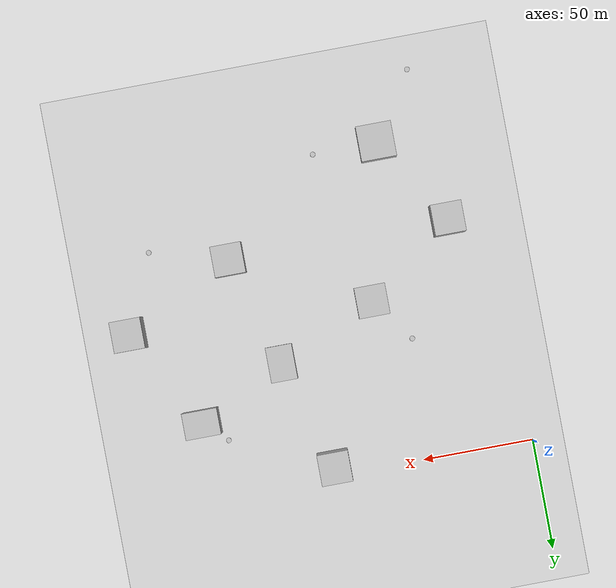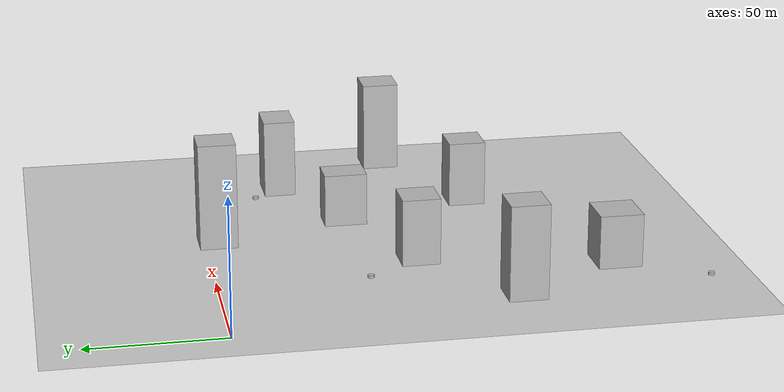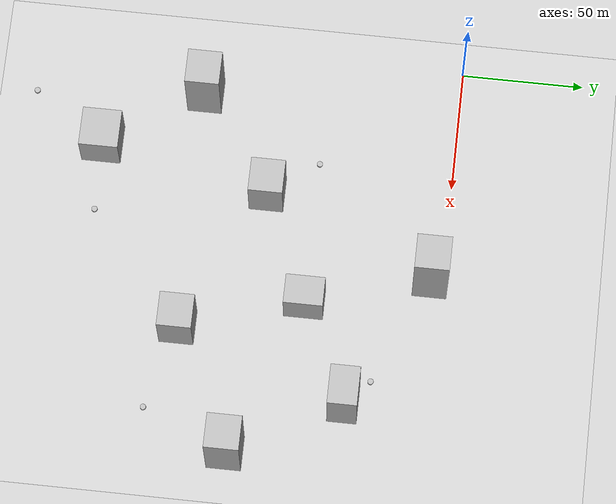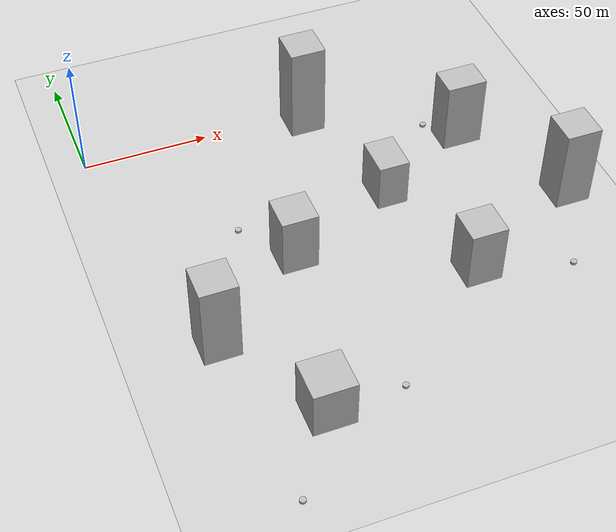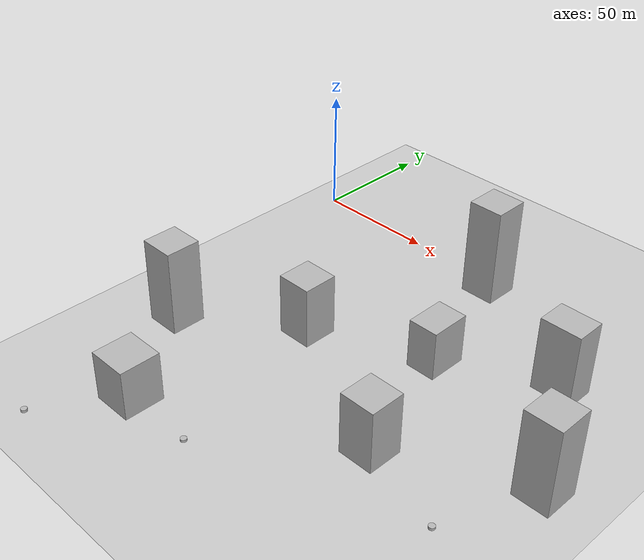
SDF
<?xml version="1.0" encoding="UTF-8"?>
<sdf version="1.9">

  <world name="default">

    <!-- ================= PHYSICS ================= -->
    <physics type="ode">
      <max_step_size>0.004</max_step_size>
      <real_time_factor>1.0</real_time_factor>
      <real_time_update_rate>250</real_time_update_rate>
    </physics>

    <gravity>0 0 -9.8</gravity>

    <magnetic_field>6e-06 2.3e-05 -4.2e-05</magnetic_field>

    <atmosphere type="adiabatic"/>

    <!-- ================= SCENE ================= -->
    <scene>
      <grid>false</grid>
      <ambient>0.4 0.4 0.4 1</ambient>
      <background>0.7 0.7 0.7 1</background>
      <shadows>true</shadows>
    </scene>

    <!-- ================= GROUND ================= -->
    <model name="ground_plane">
      <static>true</static>

      <link name="link">

        <collision name="collision">
          <geometry>
            <plane>
              <normal>0 0 1</normal>
              <size>500 500</size>
            </plane>
          </geometry>
        </collision>

        <visual name="visual">
          <geometry>
            <plane>
              <normal>0 0 1</normal>
              <size>500 500</size>
            </plane>
          </geometry>

          <material>
            <ambient>0.8 0.8 0.8 1</ambient>
            <diffuse>0.8 0.8 0.8 1</diffuse>
            <specular>0.2 0.2 0.2 1</specular>
          </material>
        </visual>

      </link>
    </model>

    <!-- ================= SUN ================= -->
    <light name="sun" type="directional">
      <pose>0 0 100 0 0 0</pose>
      <cast_shadows>true</cast_shadows>
      <intensity>1.0</intensity>
      <direction>0.3 0.4 -0.8</direction>
    </light>

    <!--                 TALL BUILDINGS                    -->

    <model name="obstacle_building_01">
      <static>true</static>
      <pose>120 -105 12.5 0 0 0</pose>
      <link name="link">

        <collision name="collision">
          <geometry>
            <box>
              <size>14 14 25</size>
            </box>
          </geometry>
        </collision>

        <visual name="visual">
          <geometry>
            <box>
              <size>14 14 25</size>
            </box>
          </geometry>
        </visual>

      </link>
    </model>

    <model name="obstacle_building_02">
      <static>true</static>
      <pose>170 -80 17.5 0 0 0</pose>
      <link name="link">

        <collision name="collision">
          <geometry>
            <box>
              <size>14 14 35</size>
            </box>
          </geometry>
        </collision>

        <visual name="visual">
          <geometry>
            <box>
              <size>14 14 35</size>
            </box>
          </geometry>
        </visual>

      </link>
    </model>

    <model name="obstacle_building_03">
      <static>true</static>
      <pose>105 -55 10 0 0 0</pose>
      <link name="link">

        <collision name="collision">
          <geometry>
            <box>
              <size>12 16 20</size>
            </box>
          </geometry>
        </collision>

        <visual name="visual">
          <geometry>
            <box>
              <size>12 16 20</size>
            </box>
          </geometry>
        </visual>

      </link>
    </model>

    <model name="obstacle_building_04">
      <static>true</static>
      <pose>145 -35 15 0 0 0</pose>
      <link name="link">

        <collision name="collision">
          <geometry>
            <box>
              <size>16 12 30</size>
            </box>
          </geometry>
        </collision>

        <visual name="visual">
          <geometry>
            <box>
              <size>16 12 30</size>
            </box>
          </geometry>
        </visual>

      </link>
    </model>

    <model name="obstacle_building_05">
      <static>true</static>
      <pose>90 -5 20 0 0 0</pose>
      <link name="link">

        <collision name="collision">
          <geometry>
            <box>
              <size>14 14 40</size>
            </box>
          </geometry>
        </collision>

        <visual name="visual">
          <geometry>
            <box>
              <size>14 14 40</size>
            </box>
          </geometry>
        </visual>

      </link>
    </model>

    <model name="obstacle_building_06">
      <static>true</static>
      <pose>60 -75 12.5 0 0 0</pose>
      <link name="link">

        <collision name="collision">
          <geometry>
            <box>
              <size>14 14 25</size>
            </box>
          </geometry>
        </collision>

        <visual name="visual">
          <geometry>
            <box>
              <size>14 14 25</size>
            </box>
          </geometry>
        </visual>

      </link>
    </model>

    <model name="obstacle_building_07">
      <static>true</static>
      <pose>20 -105 17.5 0 0 0</pose>
      <link name="link">

        <collision name="collision">
          <geometry>
            <box>
              <size>14 14 35</size>
            </box>
          </geometry>
        </collision>

        <visual name="visual">
          <geometry>
            <box>
              <size>14 14 35</size>
            </box>
          </geometry>
        </visual>

      </link>
    </model>

    <model name="obstacle_building_08">
      <static>true</static>
      <pose>45 -145 10 0 0 0</pose>
      <link name="link">

        <collision name="collision">
          <geometry>
            <box>
              <size>16 16 20</size>
            </box>
          </geometry>
        </collision>

        <visual name="visual">
          <geometry>
            <box>
              <size>16 16 20</size>
            </box>
          </geometry>
        </visual>

      </link>
    </model>

    <!--                 WAYPOINT MARKERS                  -->

    <!-- WP0 -->
    <model name="waypoint_0">
      <static>true</static>
      <pose>73.96 -145 0.5 0 0 0</pose>
      <link name="link">
        <visual name="marker">
          <geometry>
            <cylinder>
              <radius>1.2</radius>
              <length>1</length>
            </cylinder>
          </geometry>
        </visual>
      </link>
    </model>

    <!-- WP1 -->
    <model name="waypoint_1">
      <static>true</static>
      <pose>155 -115 0.5 0 0 0</pose>
      <link name="link">
        <visual name="marker">
          <geometry>
            <cylinder>
              <radius>1.2</radius>
              <length>1</length>
            </cylinder>
          </geometry>
        </visual>
      </link>
    </model>

    <!-- WP2 -->
    <model name="waypoint_2">
      <static>true</static>
      <pose>135 -25 0.5 0 0 0</pose>
      <link name="link">
        <visual name="marker">
          <geometry>
            <cylinder>
              <radius>1.2</radius>
              <length>1</length>
            </cylinder>
          </geometry>
        </visual>
      </link>
    </model>

    <!-- WP3 -->
    <model name="waypoint_3">
      <static>true</static>
      <pose>45 -55 0.5 0 0 0</pose>
      <link name="link">
        <visual name="marker">
          <geometry>
            <cylinder>
              <radius>1.2</radius>
              <length>1</length>
            </cylinder>
          </geometry>
        </visual>
      </link>
    </model>

    <!-- WP4 -->
    <model name="waypoint_4">
      <static>true</static>
      <pose>25 -175 0.5 0 0 0</pose>
      <link name="link">
        <visual name="marker">
          <geometry>
            <cylinder>
              <radius>1.2</radius>
              <length>1</length>
            </cylinder>
          </geometry>
        </visual>
      </link>
    </model>

    <!-- ================= GPS WORLD ================= -->
    <spherical_coordinates>
      <surface_model>EARTH_WGS84</surface_model>
      <world_frame_orientation>ENU</world_frame_orientation>
      <latitude_deg>47.3979710577</latitude_deg>
      <longitude_deg>8.5461637398</longitude_deg>
      <elevation>0</elevation>
    </spherical_coordinates>

  </world>

</sdf>
